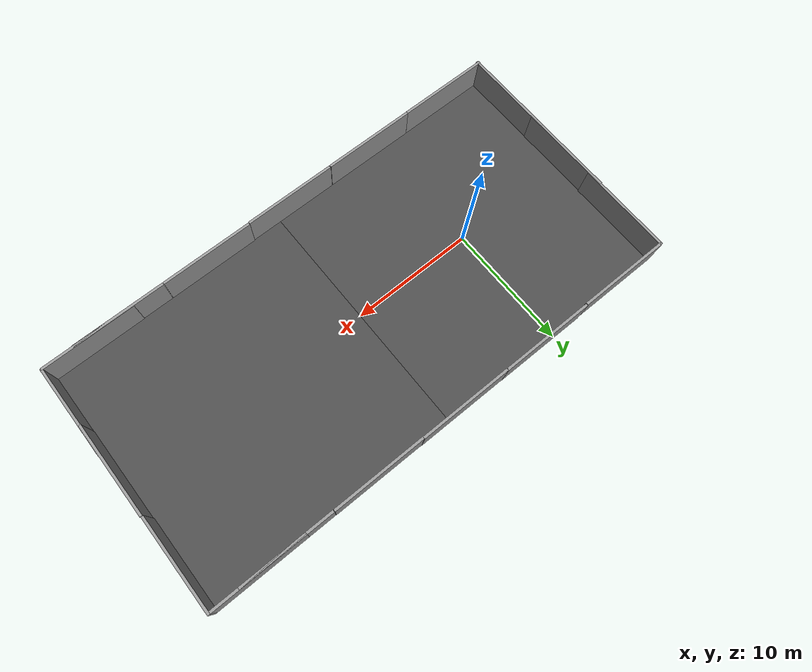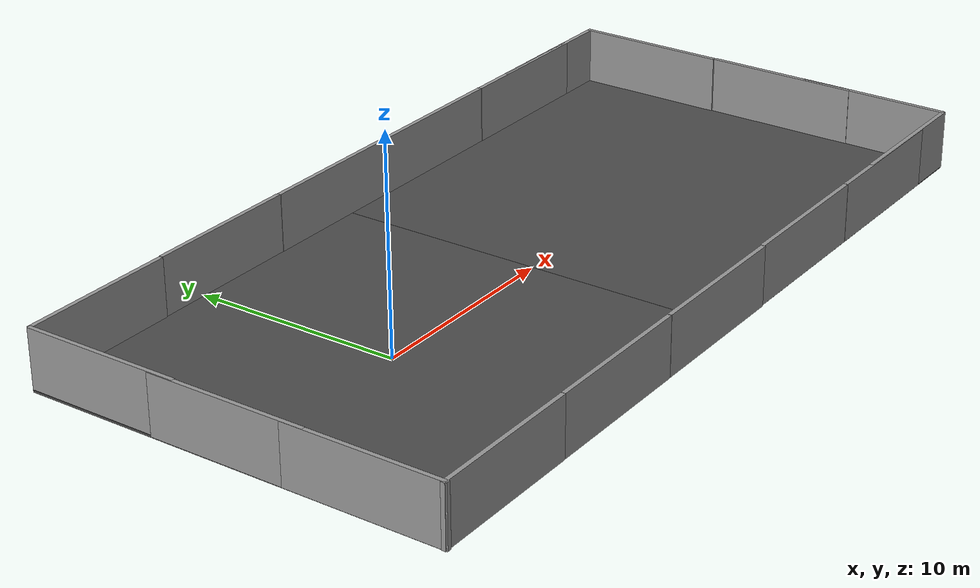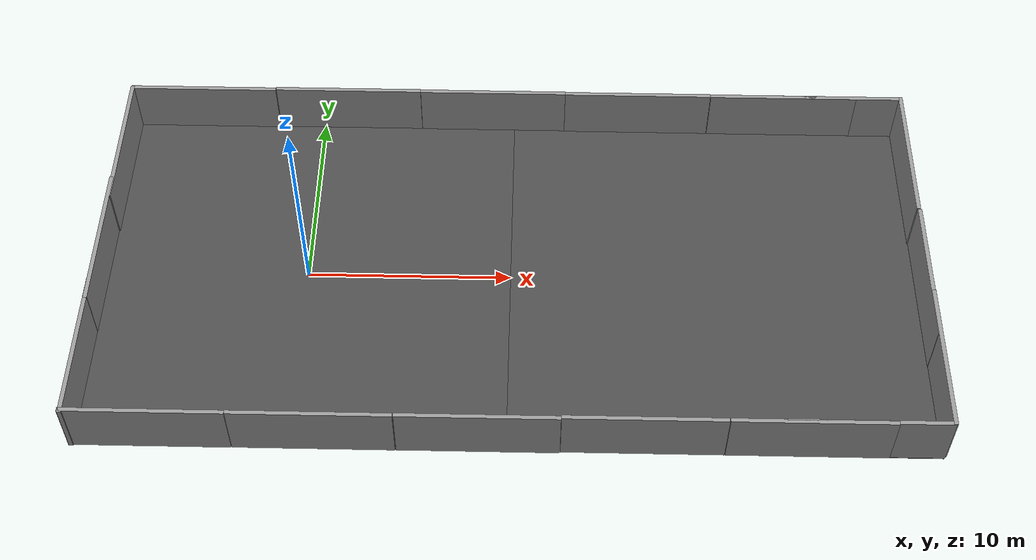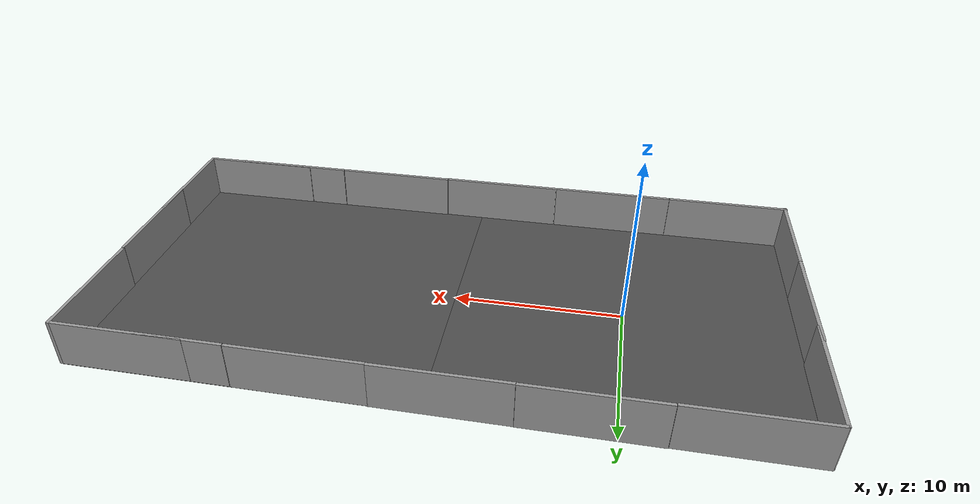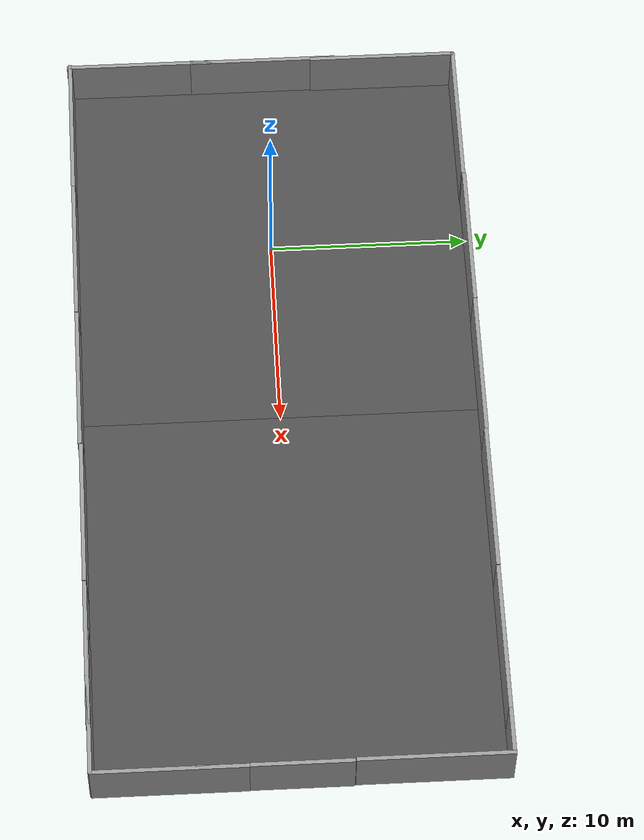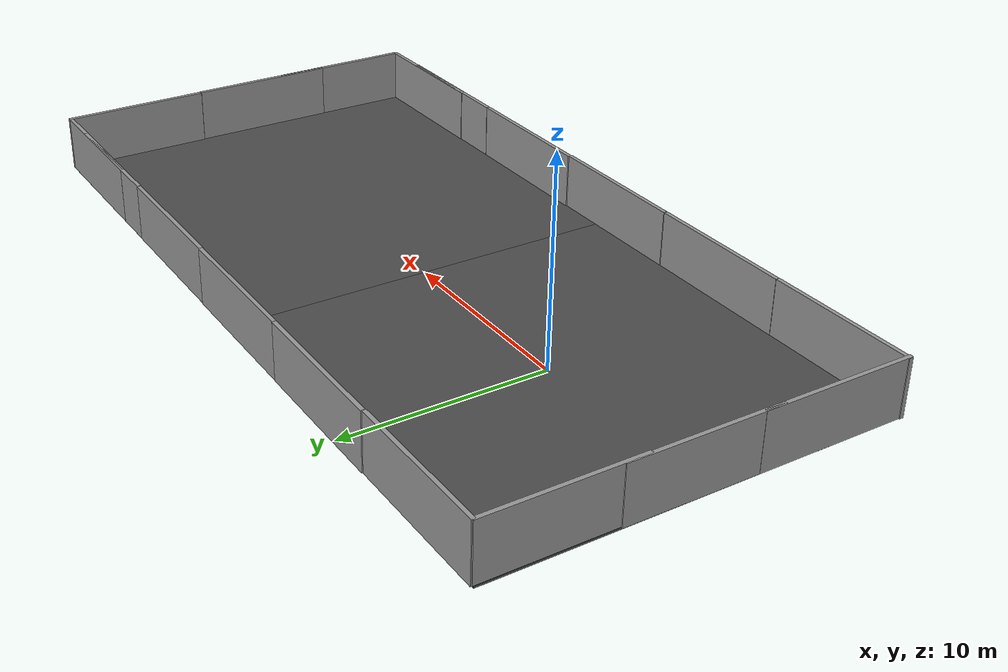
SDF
<sdf version="1.6">
 <world name="default">
  <light name="sun" type="directional">
   <pose>0 0 10 0 -0 0</pose>
   <diffuse>0.8 0.8 0.8 1</diffuse>
   <specular>0.1 0.1 0.1 1</specular>
   <attenuation>
    <range>1000</range>
    <constant>0.9</constant>
    <linear>0.01</linear>
    <quadratic>0.001</quadratic>
   </attenuation>
   <direction>-0.5 0.5 -1</direction>
  </light>
  <gravity>0 0 -9.8</gravity>
  <magnetic_field>6e-06 2.3e-05 -4.2e-05</magnetic_field>
  <atmosphere type="adiabatic"/>
  <physics name="default_physics" default="0" type="ode">
   <max_step_size>0.001</max_step_size>
   <real_time_factor>1</real_time_factor>
   <real_time_update_rate>1000</real_time_update_rate>
  </physics>
  <scene><ambient>0.4 0.4 0.4 1</ambient><background>0.7 0.7 0.7 1</background><shadows>1</shadows></scene>
  <spherical_coordinates>
   <surface_model>EARTH_WGS84</surface_model>
   <latitude_deg>0</latitude_deg>
   <longitude_deg>0</longitude_deg>
   <elevation>0</elevation>
   <heading_deg>0</heading_deg>
  </spherical_coordinates>
  <model name="asphalt_plane">
   <static>1</static>
   <link name="link">
    <collision name="collision"><geometry><box><size>20 20 0.1</size></box></geometry></collision>
    <visual name="visual">
     <cast_shadows>0</cast_shadows>
     <geometry><box><size>20 20 0.1</size></box></geometry>
     <material>
      <script>
       <uri>model://asphalt_plane/materials/scripts</uri>
       <uri>model://asphalt_plane/materials/textures</uri>
       <name>vrc/asphalt</name>
      </script>
     </material>
    </visual>
   </link>
  </model>
  <model name="grey_wall">
   <static>1</static>
   <link name="link">
    <pose>0 0 1.4 0 -0 0</pose>
    <collision name="collision"><geometry><box><size>7.5 0.2 2.8</size></box></geometry></collision>
    <visual name="visual">
     <cast_shadows>0</cast_shadows>
     <geometry><box><size>7.5 0.2 2.8</size></box></geometry>
     <material>
      <script>
       <uri>model://grey_wall/materials/scripts</uri>
       <uri>model://grey_wall/materials/textures</uri>
       <name>vrc/grey_wall</name>
      </script>
     </material>
    </visual>
   </link>
   <pose>-6.34299 -9.98083 0 0 -0 0</pose>
  </model>
  <model name="grey_wall_clone">
   <static>1</static>
   <link name="link">
    <pose>0 0 1.4 0 -0 0</pose>
    <collision name="collision"><geometry><box><size>7.5 0.2 2.8</size></box></geometry></collision>
    <visual name="visual">
     <cast_shadows>0</cast_shadows>
     <geometry><box><size>7.5 0.2 2.8</size></box></geometry>
     <material>
      <script>
       <uri>model://grey_wall/materials/scripts</uri>
       <uri>model://grey_wall/materials/textures</uri>
       <name>vrc/grey_wall</name>
      </script>
     </material>
    </visual>
   </link>
   <pose>1.16889 -9.97033 0 0 -0 0</pose>
  </model>
  <model name="grey_wall_clone_0">
   <static>1</static>
   <link name="link">
    <pose>0 0 1.4 0 -0 0</pose>
    <collision name="collision"><geometry><box><size>7.5 0.2 2.8</size></box></geometry></collision>
    <visual name="visual">
     <cast_shadows>0</cast_shadows>
     <geometry><box><size>7.5 0.2 2.8</size></box></geometry>
     <material>
      <script>
       <uri>model://grey_wall/materials/scripts</uri>
       <uri>model://grey_wall/materials/textures</uri>
       <name>vrc/grey_wall</name>
      </script>
     </material>
    </visual>
   </link>
   <pose>8.70546 -9.9612 0 0 -0 0</pose>
  </model>
  <model name="asphalt_plane_0">
   <static>1</static>
   <link name="link">
    <collision name="collision"><geometry><box><size>20 20 0.1</size></box></geometry></collision>
    <visual name="visual">
     <cast_shadows>0</cast_shadows>
     <geometry><box><size>20 20 0.1</size></box></geometry>
     <material>
      <script>
       <uri>model://asphalt_plane/materials/scripts</uri>
       <uri>model://asphalt_plane/materials/textures</uri>
       <name>vrc/asphalt</name>
      </script>
     </material>
    </visual>
   </link>
   <pose>19.9934 0.02874 0 0 -0 0</pose>
  </model>
  <model name="grey_wall_clone_0_clone">
   <static>1</static>
   <link name="link">
    <pose>0 0 1.4 0 -0 0</pose>
    <collision name="collision"><geometry><box><size>7.5 0.2 2.8</size></box></geometry></collision>
    <visual name="visual">
     <cast_shadows>0</cast_shadows>
     <geometry><box><size>7.5 0.2 2.8</size></box></geometry>
     <material>
      <script>
       <uri>model://grey_wall/materials/scripts</uri>
       <uri>model://grey_wall/materials/textures</uri>
       <name>vrc/grey_wall</name>
      </script>
     </material>
    </visual>
   </link>
   <pose>16.2213 -9.91345 0 0 -0 0</pose>
  </model>
  <model name="grey_wall_clone_0_clone_clone">
   <static>1</static>
   <link name="link">
    <pose>0 0 1.4 0 -0 0</pose>
    <collision name="collision"><geometry><box><size>7.5 0.2 2.8</size></box></geometry></collision>
    <visual name="visual">
     <cast_shadows>0</cast_shadows>
     <geometry><box><size>7.5 0.2 2.8</size></box></geometry>
     <material>
      <script>
       <uri>model://grey_wall/materials/scripts</uri>
       <uri>model://grey_wall/materials/textures</uri>
       <name>vrc/grey_wall</name>
      </script>
     </material>
    </visual>
   </link>
   <pose>23.7504 -9.91232 0 0 -0 0</pose>
  </model>
  <model name="grey_wall_clone_0_clone_clone_1">
   <static>1</static>
   <link name="link">
    <pose>0 0 1.4 0 -0 0</pose>
    <collision name="collision"><geometry><box><size>7.5 0.2 2.8</size></box></geometry></collision>
    <visual name="visual">
     <cast_shadows>0</cast_shadows>
     <geometry><box><size>7.5 0.2 2.8</size></box></geometry>
     <material>
      <script>
       <uri>model://grey_wall/materials/scripts</uri>
       <uri>model://grey_wall/materials/textures</uri>
       <name>vrc/grey_wall</name>
      </script>
     </material>
    </visual>
   </link>
   <pose>1.3555 10.0153 0 0 -0 0</pose>
  </model>
  <model name="grey_wall_clone_0_clone_clone_2">
   <static>1</static>
   <link name="link">
    <pose>0 0 1.4 0 -0 0</pose>
    <collision name="collision"><geometry><box><size>7.5 0.2 2.8</size></box></geometry></collision>
    <visual name="visual">
     <cast_shadows>0</cast_shadows>
     <geometry><box><size>7.5 0.2 2.8</size></box></geometry>
     <material>
      <script>
       <uri>model://grey_wall/materials/scripts</uri>
       <uri>model://grey_wall/materials/textures</uri>
       <name>vrc/grey_wall</name>
      </script>
     </material>
    </visual>
   </link>
   <pose>8.86552 9.99863 0 0 -0 0</pose>
  </model>
  <model name="grey_wall_clone_0_clone_clone_0">
   <static>1</static>
   <link name="link">
    <pose>0 0 1.4 0 -0 0</pose>
    <collision name="collision"><geometry><box><size>7.5 0.2 2.8</size></box></geometry></collision>
    <visual name="visual">
     <cast_shadows>0</cast_shadows>
     <geometry><box><size>7.5 0.2 2.8</size></box></geometry>
     <material>
      <script>
       <uri>model://grey_wall/materials/scripts</uri>
       <uri>model://grey_wall/materials/textures</uri>
       <name>vrc/grey_wall</name>
      </script>
     </material>
    </visual>
   </link>
   <pose>-6.16796 9.97781 0 0 -0 0</pose>
  </model>
  <model name="grey_wall_clone_0_clone_clone_3">
   <static>1</static>
   <link name="link">
    <pose>0 0 1.4 0 -0 0</pose>
    <collision name="collision"><geometry><box><size>7.5 0.2 2.8</size></box></geometry></collision>
    <visual name="visual">
     <cast_shadows>0</cast_shadows>
     <geometry><box><size>7.5 0.2 2.8</size></box></geometry>
     <material>
      <script>
       <uri>model://grey_wall/materials/scripts</uri>
       <uri>model://grey_wall/materials/textures</uri>
       <name>vrc/grey_wall</name>
      </script>
     </material>
    </visual>
   </link>
   <pose>16.365 9.97288 0 0 -0 0</pose>
  </model>
  <model name="grey_wall_clone_0_clone_clone_4">
   <static>1</static>
   <link name="link">
    <pose>0 0 1.4 0 -0 0</pose>
    <collision name="collision"><geometry><box><size>7.5 0.2 2.8</size></box></geometry></collision>
    <visual name="visual">
     <cast_shadows>0</cast_shadows>
     <geometry><box><size>7.5 0.2 2.8</size></box></geometry>
     <material>
      <script>
       <uri>model://grey_wall/materials/scripts</uri>
       <uri>model://grey_wall/materials/textures</uri>
       <name>vrc/grey_wall</name>
      </script>
     </material>
    </visual>
   </link>
   <pose>23.8974 9.95874 0 0 -0 0</pose>
  </model>
  <model name="grey_wall_clone_0_clone_clone_4_clone">
   <static>1</static>
   <link name="link">
    <pose>0 0 1.4 0 -0 0</pose>
    <collision name="collision"><geometry><box><size>7.5 0.2 2.8</size></box></geometry></collision>
    <visual name="visual">
     <cast_shadows>0</cast_shadows>
     <geometry><box><size>7.5 0.2 2.8</size></box></geometry>
     <material>
      <script>
       <uri>model://grey_wall/materials/scripts</uri>
       <uri>model://grey_wall/materials/textures</uri>
       <name>vrc/grey_wall</name>
      </script>
     </material>
    </visual>
   </link>
   <pose>29.9378 6.30804 0 0 -0 1.57</pose>
  </model>
  <model name="grey_wall_clone_0_clone_clone_4_clone_0">
   <static>1</static>
   <link name="link">
    <pose>0 0 1.4 0 -0 0</pose>
    <collision name="collision"><geometry><box><size>7.5 0.2 2.8</size></box></geometry></collision>
    <visual name="visual">
     <cast_shadows>0</cast_shadows>
     <geometry><box><size>7.5 0.2 2.8</size></box></geometry>
     <material>
      <script>
       <uri>model://grey_wall/materials/scripts</uri>
       <uri>model://grey_wall/materials/textures</uri>
       <name>vrc/grey_wall</name>
      </script>
     </material>
    </visual>
   </link>
   <pose>26.2746 -9.87846 0 0 -0 0</pose>
  </model>
  <model name="grey_wall_clone_0_clone_clone_4_clone_1">
   <static>1</static>
   <link name="link">
    <pose>0 0 1.4 0 -0 0</pose>
    <collision name="collision"><geometry><box><size>7.5 0.2 2.8</size></box></geometry></collision>
    <visual name="visual">
     <cast_shadows>0</cast_shadows>
     <geometry><box><size>7.5 0.2 2.8</size></box></geometry>
     <material>
      <script>
       <uri>model://grey_wall/materials/scripts</uri>
       <uri>model://grey_wall/materials/textures</uri>
       <name>vrc/grey_wall</name>
      </script>
     </material>
    </visual>
   </link>
   <pose>26.1143 9.96003 0 0 -0 0</pose>
  </model>
  <model name="grey_wall_clone_0_clone_clone_4_clone_clone">
   <static>1</static>
   <link name="link">
    <pose>0 0 1.4 0 -0 0</pose>
    <collision name="collision"><geometry><box><size>7.5 0.2 2.8</size></box></geometry></collision>
    <visual name="visual">
     <cast_shadows>0</cast_shadows>
     <geometry><box><size>7.5 0.2 2.8</size></box></geometry>
     <material>
      <script>
       <uri>model://grey_wall/materials/scripts</uri>
       <uri>model://grey_wall/materials/textures</uri>
       <name>vrc/grey_wall</name>
      </script>
     </material>
    </visual>
   </link>
   <pose>29.9748 -1.21482 0 0 -0 1.57</pose>
  </model>
  <model name="grey_wall_clone_0_clone_clone_4_clone_clone_0">
   <static>1</static>
   <link name="link">
    <pose>0 0 1.4 0 -0 0</pose>
    <collision name="collision"><geometry><box><size>7.5 0.2 2.8</size></box></geometry></collision>
    <visual name="visual">
     <cast_shadows>0</cast_shadows>
     <geometry><box><size>7.5 0.2 2.8</size></box></geometry>
     <material>
      <script>
       <uri>model://grey_wall/materials/scripts</uri>
       <uri>model://grey_wall/materials/textures</uri>
       <name>vrc/grey_wall</name>
      </script>
     </material>
    </visual>
   </link>
   <pose>29.9905 -6.17844 0 0 -0 1.57</pose>
  </model>
  <model name="grey_wall_clone_0_clone_clone_4_clone_clone_1">
   <static>1</static>
   <link name="link">
    <pose>0 0 1.4 0 -0 0</pose>
    <collision name="collision"><geometry><box><size>7.5 0.2 2.8</size></box></geometry></collision>
    <visual name="visual">
     <cast_shadows>0</cast_shadows>
     <geometry><box><size>7.5 0.2 2.8</size></box></geometry>
     <material>
      <script>
       <uri>model://grey_wall/materials/scripts</uri>
       <uri>model://grey_wall/materials/textures</uri>
       <name>vrc/grey_wall</name>
      </script>
     </material>
    </visual>
   </link>
   <pose>-9.87952 6.28271 0 0 -0 1.57</pose>
  </model>
  <model name="grey_wall_clone_0_clone_clone_4_clone_clone_2">
   <static>1</static>
   <link name="link">
    <pose>0 0 1.4 0 -0 0</pose>
    <collision name="collision"><geometry><box><size>7.5 0.2 2.8</size></box></geometry></collision>
    <visual name="visual">
     <cast_shadows>0</cast_shadows>
     <geometry><box><size>7.5 0.2 2.8</size></box></geometry>
     <material>
      <script>
       <uri>model://grey_wall/materials/scripts</uri>
       <uri>model://grey_wall/materials/textures</uri>
       <name>vrc/grey_wall</name>
      </script>
     </material>
    </visual>
   </link>
   <pose>-9.94969 -6.38748 0 0 -0 1.57</pose>
  </model>
  <model name="grey_wall_clone_0_clone_clone_4_clone_clone_3">
   <static>1</static>
   <link name="link">
    <pose>0 0 1.4 0 -0 0</pose>
    <collision name="collision"><geometry><box><size>7.5 0.2 2.8</size></box></geometry></collision>
    <visual name="visual">
     <cast_shadows>0</cast_shadows>
     <geometry><box><size>7.5 0.2 2.8</size></box></geometry>
     <material>
      <script>
       <uri>model://grey_wall/materials/scripts</uri>
       <uri>model://grey_wall/materials/textures</uri>
       <name>vrc/grey_wall</name>
      </script>
     </material>
    </visual>
   </link>
   <pose>-9.93378 0.027886 0 0 -0 1.57</pose>
  </model>
 </world>
</sdf>
